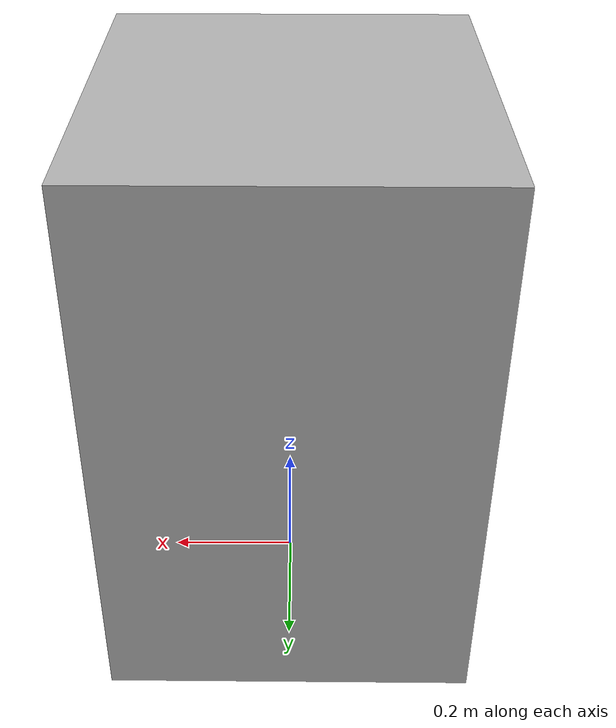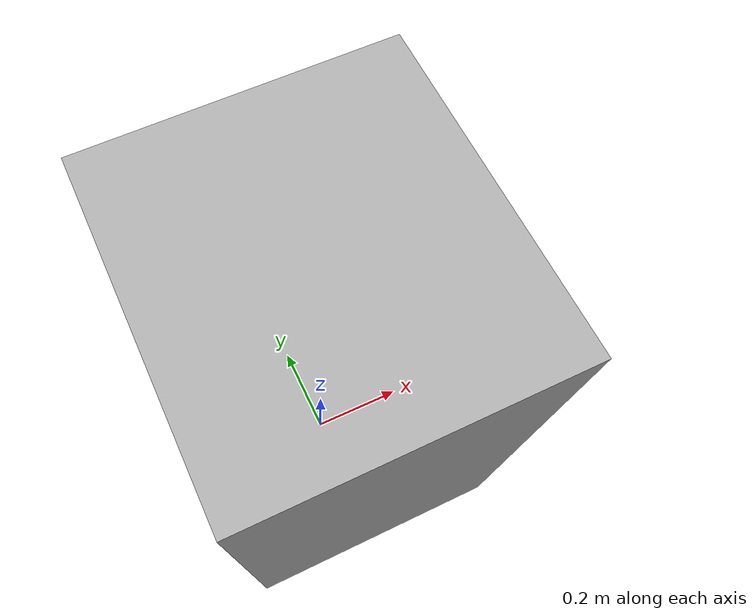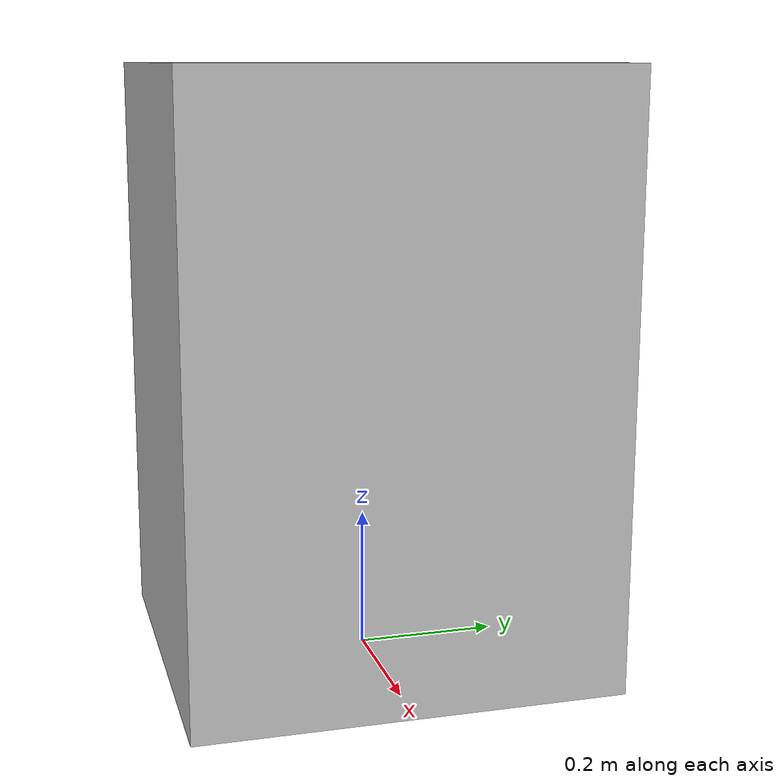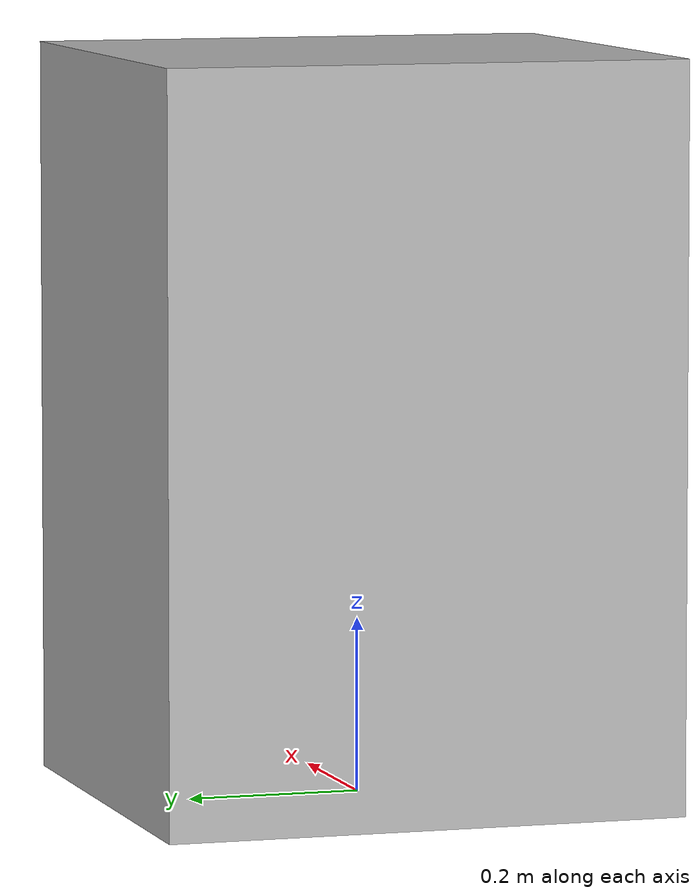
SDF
<?xml version="1.0" ?>
<sdf version="1.6">
  <model name="rwc2022/washing_machine">
    <static>true</static>
    <link name="1_link">
      <collision name="1_col">
        <geometry>
          <box>
            <size>0.55 0.6 0.85</size>
          </box>
        </geometry>
      </collision>
      <visual name="1_vis">
        <geometry>
          <box>
            <size>0.55 0.6 0.85</size>
          </box>
        </geometry>
      </visual>
      <pose>0.0 0.0 0.425 0 0 0</pose>
    </link>
    <link name="on_top_of">
      <virtual_volume name="on_top_of_vv">
        <geometry>
          <box>
            <size>0.53 0.54 0.35</size>
          </box>
        </geometry>
        <pose>0.0 0.0 1.045 0 0 0</pose>
      </virtual_volume>
    </link>
    <link name="in_front_of">
      <virtual_volume name="in_front_of_vv">
        <geometry>
          <box>
            <size>0.2 0.4 0.01</size>
          </box>
        </geometry>
        <pose>0.775 0.0 0.005 0 0 0</pose>
      </virtual_volume>
    </link>
  </model>
</sdf>
